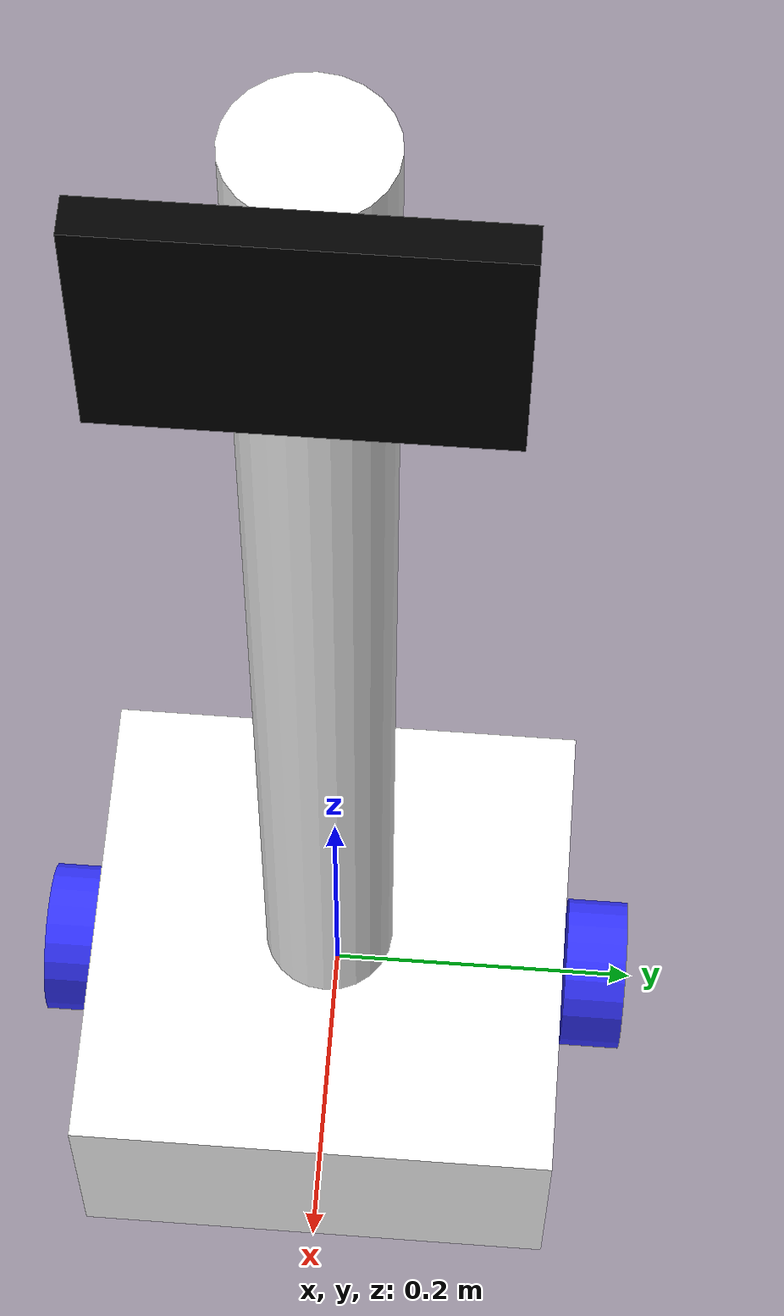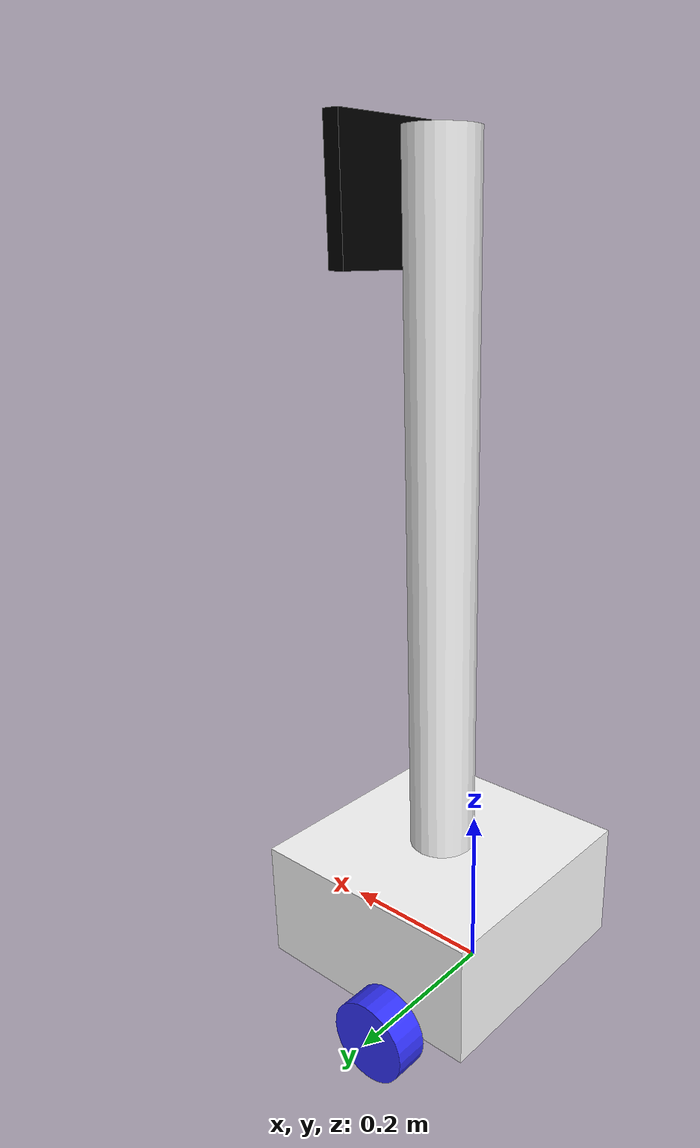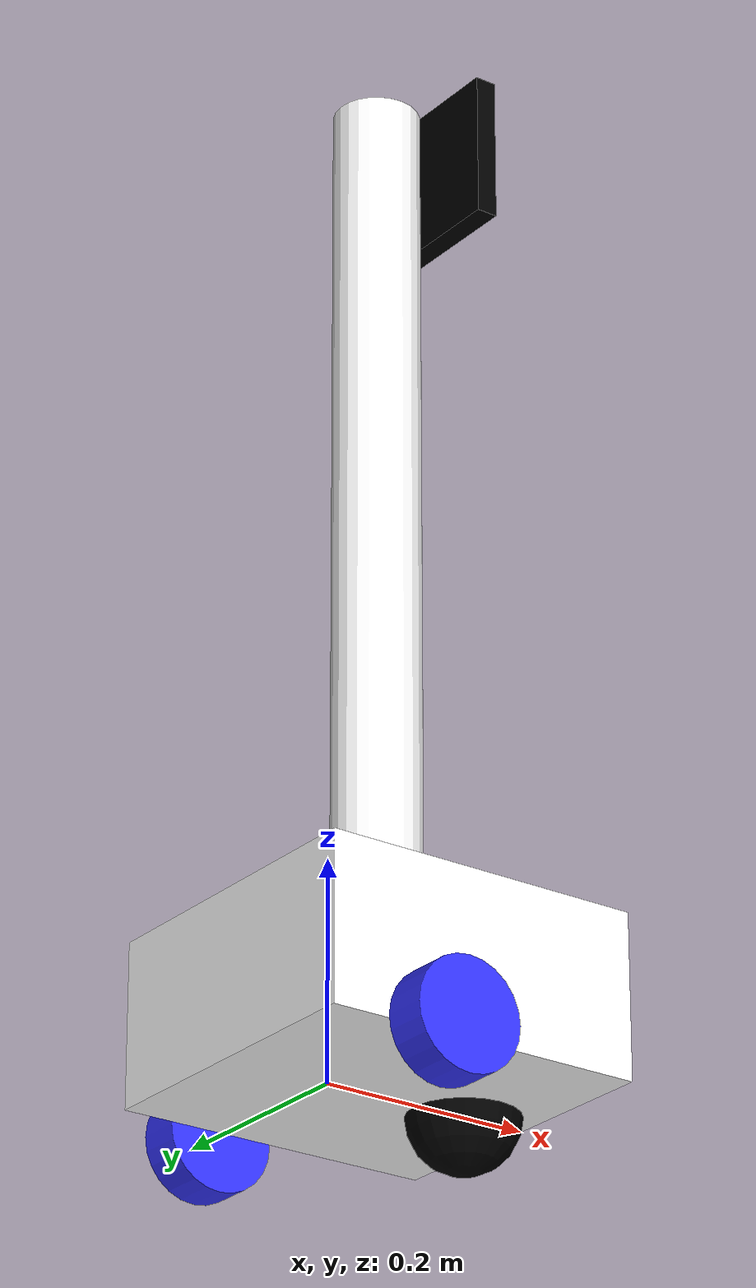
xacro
<?xml version="1.0"?>
<robot xmlns:xacro="http://www.ros.org/wiki/xacro" >

    <xacro:include filename="inertial_macros.xacro"/>

    <material name="white">
        <color rgba ="1 1 1 1" />
    </material>

    <material name="orange">
        <color rgba ="1 0.3 0.1 1" />
    </material>

    <material name="blue">
        <color rgba ="0.2 0.2 1 1" />
    </material>

    <material name="black">
        <color rgba ="0 0 0 1" />
    </material>

    <material name="red">
        <color rgba ="1 0 0 1" />
    </material>

    <!-- BASE LINK-->

    <link name = "base_link">

    </link>

    <!-- CHASSIS LINK -->

    <joint name="chassis_joint" type="fixed">
        <parent link="base_link"/>
        <child link ="chassis" />
        <origin xyz ="-0.1 0 0"/>
    </joint>

    <link name="chassis">
        <visual>
            <origin xyz="0.15 0 0.075"/>
            <geometry>
                <box size="0.3 0.3 0.15"/>
            </geometry>
            <material name="white"/>
        </visual>
        <collision>
            <origin xyz="0.15 0 0.075"/>
            <geometry>
                <box size="0.3 0.3 0.15"/>
            </geometry>
        </collision>
        <xacro:inertial_box mass="0.5" x="0.3" y="0.3" z="0.15">
            <origin xyz="0.15 0 0.075" rpy="0 0 0"/>
        </xacro:inertial_box>
    </link>

    <!-- LEFT WHEEL LINK -->

    <joint name="left_wheel_joint" type="continuous">
        <parent link="base_link"/>
        <child link="left_wheel"/>
        <origin xyz="0 0.175 0" rpy="-${pi/2} 0 0"/>
        <axis xyz="0 0 1">
            <limit>
                <effort>50000</effort>
            </limit>
        </axis>
    </joint>

    <link name="left_wheel">
    <visual>
        <geometry>
            <cylinder radius="0.05" length="0.04"/>
        </geometry>
        <material name="blue"/>
    </visual>
    <collision>
        <geometry>
            <cylinder radius="0.05" length="0.04"/>
        </geometry>
    </collision>
    <xacro:inertial_cylinder mass="0.1" length="0.04" radius="0.05">
        <origin xyz="0 0 0" rpy="0 0 0"/>
    </xacro:inertial_cylinder>
    </link>

    <!-- RIGHT WHEEL LINK -->

    <joint name="right_wheel_joint" type="continuous">
        <parent link="base_link"/>
        <child link="right_wheel"/>
        <origin xyz="0 -0.175 0" rpy="${pi/2} 0 0"/>
        <axis xyz="0 0 -1">
            <limit>
                <effort>50000</effort>
            </limit>
        </axis>
    </joint>

    <link name="right_wheel">
    <visual>
        <geometry>
            <cylinder radius="0.05" length="0.04"/>
        </geometry>
        <material name="blue"/>
    </visual>
    <collision>
        <geometry>
            <cylinder radius="0.05" length="0.04"/>
        </geometry>
    </collision>
    <xacro:inertial_cylinder mass="0.1" length="0.04" radius="0.05">
        <origin xyz="0 0 0" rpy="0 0 0"/>
    </xacro:inertial_cylinder>
    </link>

    <!-- CASTER WHEEL LINK -->

    <joint name="caster_wheel_joint" type="fixed">
        <parent link="chassis"/>
        <child link="caster_wheel"/>
        <origin xyz="0.24 0 0"/>
    </joint>

    <link name="caster_wheel">
        <visual>
            <geometry>
                <sphere radius="0.05"/>
            </geometry>
            <material name="black"/>
        </visual>
        <collision>
            <geometry>
                <sphere radius="0.05"/>
            </geometry>
        </collision>
        <xacro:inertial_sphere mass="0.1" radius="0.05">
            <origin xyz="0 0 0" rpy="0 0 0"/>
        </xacro:inertial_sphere>
    </link>

    <!-- MOUNT -->

    <joint name="mount_joint" type="fixed">
        <parent link="chassis"/>
        <child link="mount"/>
        <origin xyz="0.15 0 0.15" rpy="0 0 0"/>
    </joint>

    <link name="mount">
        <visual>
            <origin xyz="0 0 0.4"/>
            <geometry>
                <cylinder radius="0.04" length="0.8"/>
            </geometry>
            <material name="white"/>
        </visual>
        <collision>
            <origin xyz="0 0 0.4"/>
            <geometry>
                <cylinder radius="0.04" length="0.8"/>
            </geometry>
        </collision>
        <xacro:inertial_cylinder mass="0.1" length="0.8" radius="0.04">
            <origin xyz="0 0 0.4" rpy="0 0 0"/>
        </xacro:inertial_cylinder>
    </link>

    <!-- Screen -->

    <joint name="screen_joint" type="fixed">
        <parent link="mount"/>
        <child link="screen"/>
        <origin xyz="0.04 0 0.74"/>
    </joint>

    <link name="screen">
        <visual>
            <origin xyz="0.01 0 0"/>
            <geometry>
                <box size="0.02 0.2 0.14"/>
            </geometry>
            <material name="black"/>
        </visual>
        <collision>
            <origin xyz="0.01 0 0"/>
            <geometry>
                <box size="0.02 0.2 0.14"/>
            </geometry>
        </collision>
        <xacro:inertial_box mass="0.05" x="0.02" y="0.2" z="0.14">
            <origin xyz="0.01 0 0" rpy="0 0 0"/>
        </xacro:inertial_box>
    </link>

    <gazebo reference="right_wheel">
        <mu1>1.0</mu1>
        <mu2>1.0</mu2>
    </gazebo>

    <gazebo reference="left_wheel">
        <mu1>1.0</mu1>
        <mu2>1.0</mu2>
    </gazebo>

    <gazebo reference="caster_wheel">
        <mu1> 0.000001 </mu1>
        <mu2> 0.000001 </mu2>
    </gazebo>
</robot>
